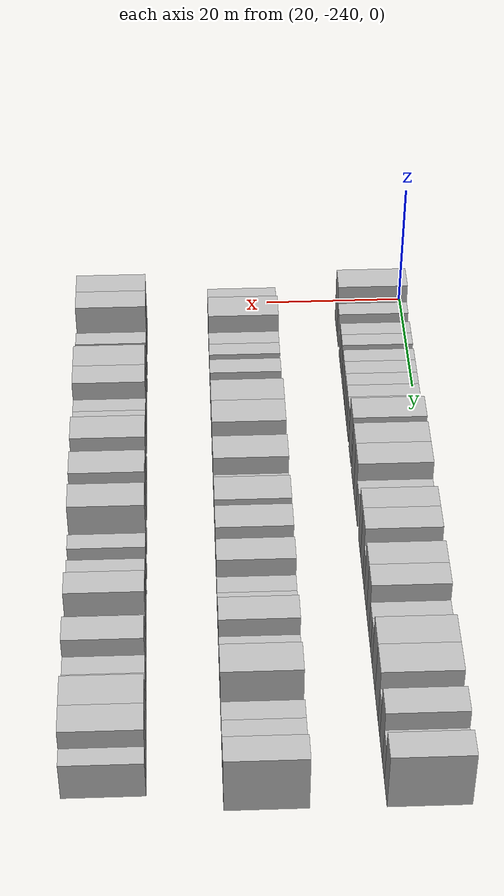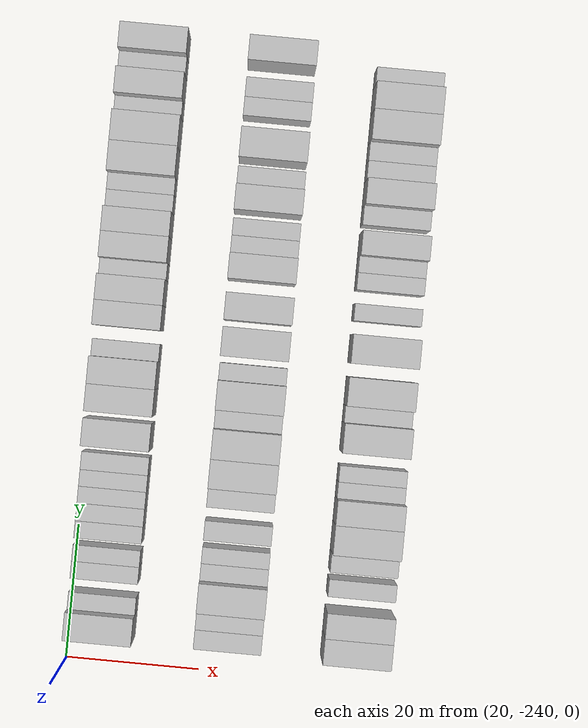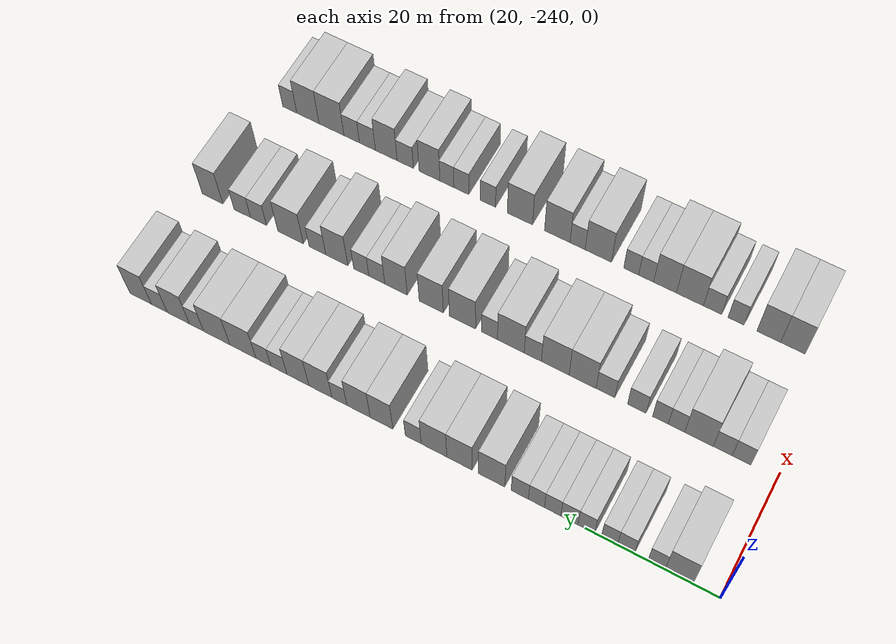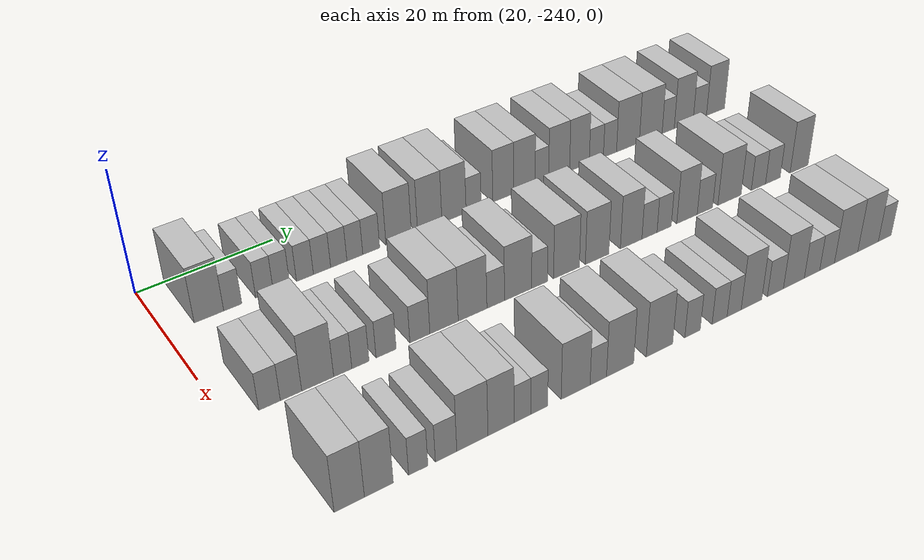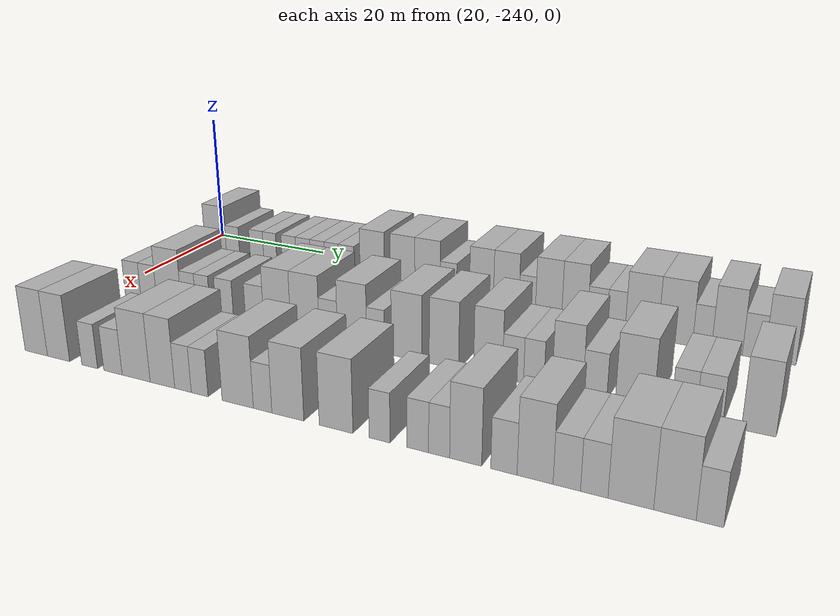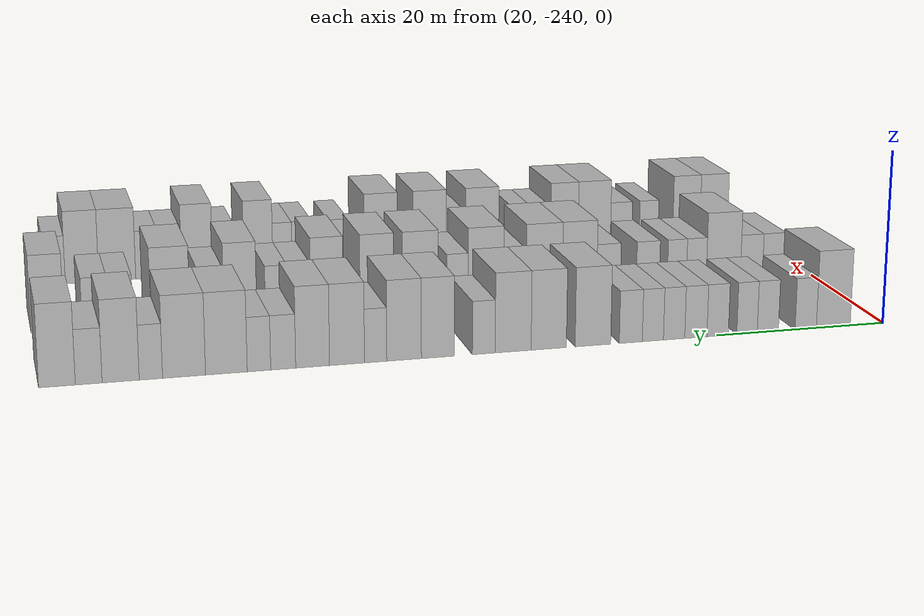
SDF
<sdf version="1.6">
 <world name="default">
  <model name="building_1">
   <static>1</static>
   <pose>25.0000 -233.9420 0 0.000000 0.000000 0.000000</pose>
   <link name="link">
    <pose>0 0 4.50 0 0 0</pose>
    <collision name="collision"><geometry><box><size>10.0000 4.1160 9.0000</size></box></geometry></collision>
    <visual name="visual">
     <cast_shadows>0</cast_shadows>
     <geometry><box><size>10.0000 4.1160 9.0000</size></box></geometry>
     <material>
      <script>
       <uri>model://HANNAS_wall/materials/scripts</uri>
       <uri>model://HANNAS_wall/materials/textures</uri>
       <name>vrc/HANNAS_wall</name>
      </script>
     </material>
    </visual>
   </link>
  </model>
  <model name="building_2">
   <static>1</static>
   <pose>25.0000 -230.6009 0 0.000000 0.000000 0.000000</pose>
   <link name="link">
    <pose>0 0 3.00 0 0 0</pose>
    <collision name="collision"><geometry><box><size>10.0000 2.5662 6.0000</size></box></geometry></collision>
    <visual name="visual">
     <cast_shadows>0</cast_shadows>
     <geometry><box><size>10.0000 2.5662 6.0000</size></box></geometry>
     <material>
      <script>
       <uri>model://HANNAS_wall/materials/scripts</uri>
       <uri>model://HANNAS_wall/materials/textures</uri>
       <name>vrc/HANNAS_wall</name>
      </script>
     </material>
    </visual>
   </link>
  </model>
  <model name="building_3">
   <static>1</static>
   <pose>25.0000 -226.0514 0 0.000000 0.000000 0.000000</pose>
   <link name="link">
    <pose>0 0 3.00 0 0 0</pose>
    <collision name="collision"><geometry><box><size>10.0000 2.5329 6.0000</size></box></geometry></collision>
    <visual name="visual">
     <cast_shadows>0</cast_shadows>
     <geometry><box><size>10.0000 2.5329 6.0000</size></box></geometry>
     <material>
      <script>
       <uri>model://HANNAS_wall/materials/scripts</uri>
       <uri>model://HANNAS_wall/materials/textures</uri>
       <name>vrc/HANNAS_wall</name>
      </script>
     </material>
    </visual>
   </link>
  </model>
  <model name="building_4">
   <static>1</static>
   <pose>25.0000 -223.5698 0 0.000000 0.000000 0.000000</pose>
   <link name="link">
    <pose>0 0 3.00 0 0 0</pose>
    <collision name="collision"><geometry><box><size>10.0000 2.4303 6.0000</size></box></geometry></collision>
    <visual name="visual">
     <cast_shadows>0</cast_shadows>
     <geometry><box><size>10.0000 2.4303 6.0000</size></box></geometry>
     <material>
      <script>
       <uri>model://HANNAS_wall/materials/scripts</uri>
       <uri>model://HANNAS_wall/materials/textures</uri>
       <name>vrc/HANNAS_wall</name>
      </script>
     </material>
    </visual>
   </link>
  </model>
  <model name="building_5">
   <static>1</static>
   <pose>25.0000 -220.0891 0 0.000000 0.000000 0.000000</pose>
   <link name="link">
    <pose>0 0 3.00 0 0 0</pose>
    <collision name="collision"><geometry><box><size>10.0000 2.5312 6.0000</size></box></geometry></collision>
    <visual name="visual">
     <cast_shadows>0</cast_shadows>
     <geometry><box><size>10.0000 2.5312 6.0000</size></box></geometry>
     <material>
      <script>
       <uri>model://HANNAS_wall/materials/scripts</uri>
       <uri>model://HANNAS_wall/materials/textures</uri>
       <name>vrc/HANNAS_wall</name>
      </script>
     </material>
    </visual>
   </link>
  </model>
  <model name="building_6">
   <static>1</static>
   <pose>25.0000 -217.5162 0 0.000000 0.000000 0.000000</pose>
   <link name="link">
    <pose>0 0 3.00 0 0 0</pose>
    <collision name="collision"><geometry><box><size>10.0000 2.6145 6.0000</size></box></geometry></collision>
    <visual name="visual">
     <cast_shadows>0</cast_shadows>
     <geometry><box><size>10.0000 2.6145 6.0000</size></box></geometry>
     <material>
      <script>
       <uri>model://HANNAS_wall/materials/scripts</uri>
       <uri>model://HANNAS_wall/materials/textures</uri>
       <name>vrc/HANNAS_wall</name>
      </script>
     </material>
    </visual>
   </link>
  </model>
  <model name="building_7">
   <static>1</static>
   <pose>25.0000 -214.9641 0 0.000000 0.000000 0.000000</pose>
   <link name="link">
    <pose>0 0 3.00 0 0 0</pose>
    <collision name="collision"><geometry><box><size>10.0000 2.4898 6.0000</size></box></geometry></collision>
    <visual name="visual">
     <cast_shadows>0</cast_shadows>
     <geometry><box><size>10.0000 2.4898 6.0000</size></box></geometry>
     <material>
      <script>
       <uri>model://HANNAS_wall/materials/scripts</uri>
       <uri>model://HANNAS_wall/materials/textures</uri>
       <name>vrc/HANNAS_wall</name>
      </script>
     </material>
    </visual>
   </link>
  </model>
  <model name="building_8">
   <static>1</static>
   <pose>25.0000 -212.4872 0 0.000000 0.000000 0.000000</pose>
   <link name="link">
    <pose>0 0 3.00 0 0 0</pose>
    <collision name="collision"><geometry><box><size>10.0000 2.4640 6.0000</size></box></geometry></collision>
    <visual name="visual">
     <cast_shadows>0</cast_shadows>
     <geometry><box><size>10.0000 2.4640 6.0000</size></box></geometry>
     <material>
      <script>
       <uri>model://HANNAS_wall/materials/scripts</uri>
       <uri>model://HANNAS_wall/materials/textures</uri>
       <name>vrc/HANNAS_wall</name>
      </script>
     </material>
    </visual>
   </link>
  </model>
  <model name="building_9">
   <static>1</static>
   <pose>25.0000 -209.9251 0 0.000000 0.000000 0.000000</pose>
   <link name="link">
    <pose>0 0 3.00 0 0 0</pose>
    <collision name="collision"><geometry><box><size>10.0000 2.6602 6.0000</size></box></geometry></collision>
    <visual name="visual">
     <cast_shadows>0</cast_shadows>
     <geometry><box><size>10.0000 2.6602 6.0000</size></box></geometry>
     <material>
      <script>
       <uri>model://HANNAS_wall/materials/scripts</uri>
       <uri>model://HANNAS_wall/materials/textures</uri>
       <name>vrc/HANNAS_wall</name>
      </script>
     </material>
    </visual>
   </link>
  </model>
  <model name="building_10">
   <static>1</static>
   <pose>25.0000 -205.5535 0 0.000000 0.000000 0.000000</pose>
   <link name="link">
    <pose>0 0 4.50 0 0 0</pose>
    <collision name="collision"><geometry><box><size>10.0000 4.0828 9.0000</size></box></geometry></collision>
    <visual name="visual">
     <cast_shadows>0</cast_shadows>
     <geometry><box><size>10.0000 4.0828 9.0000</size></box></geometry>
     <material>
      <script>
       <uri>model://HANNAS_wall/materials/scripts</uri>
       <uri>model://HANNAS_wall/materials/textures</uri>
       <name>vrc/HANNAS_wall</name>
      </script>
     </material>
    </visual>
   </link>
  </model>
  <model name="building_11">
   <static>1</static>
   <pose>25.0000 -200.5111 0 0.000000 0.000000 0.000000</pose>
   <link name="link">
    <pose>0 0 4.50 0 0 0</pose>
    <collision name="collision"><geometry><box><size>10.0000 4.0020 9.0000</size></box></geometry></collision>
    <visual name="visual">
     <cast_shadows>0</cast_shadows>
     <geometry><box><size>10.0000 4.0020 9.0000</size></box></geometry>
     <material>
      <script>
       <uri>model://HANNAS_wall/materials/scripts</uri>
       <uri>model://HANNAS_wall/materials/textures</uri>
       <name>vrc/HANNAS_wall</name>
      </script>
     </material>
    </visual>
   </link>
  </model>
  <model name="building_12">
   <static>1</static>
   <pose>25.0000 -196.4841 0 0.000000 0.000000 0.000000</pose>
   <link name="link">
    <pose>0 0 4.50 0 0 0</pose>
    <collision name="collision"><geometry><box><size>10.0000 4.0521 9.0000</size></box></geometry></collision>
    <visual name="visual">
     <cast_shadows>0</cast_shadows>
     <geometry><box><size>10.0000 4.0521 9.0000</size></box></geometry>
     <material>
      <script>
       <uri>model://HANNAS_wall/materials/scripts</uri>
       <uri>model://HANNAS_wall/materials/textures</uri>
       <name>vrc/HANNAS_wall</name>
      </script>
     </material>
    </visual>
   </link>
  </model>
  <model name="building_13">
   <static>1</static>
   <pose>25.0000 -193.1769 0 0.000000 0.000000 0.000000</pose>
   <link name="link">
    <pose>0 0 3.00 0 0 0</pose>
    <collision name="collision"><geometry><box><size>10.0000 2.5623 6.0000</size></box></geometry></collision>
    <visual name="visual">
     <cast_shadows>0</cast_shadows>
     <geometry><box><size>10.0000 2.5623 6.0000</size></box></geometry>
     <material>
      <script>
       <uri>model://HANNAS_wall/materials/scripts</uri>
       <uri>model://HANNAS_wall/materials/textures</uri>
       <name>vrc/HANNAS_wall</name>
      </script>
     </material>
    </visual>
   </link>
  </model>
  <model name="building_14">
   <static>1</static>
   <pose>25.0000 -188.0685 0 0.000000 0.000000 0.000000</pose>
   <link name="link">
    <pose>0 0 4.50 0 0 0</pose>
    <collision name="collision"><geometry><box><size>10.0000 3.6544 9.0000</size></box></geometry></collision>
    <visual name="visual">
     <cast_shadows>0</cast_shadows>
     <geometry><box><size>10.0000 3.6544 9.0000</size></box></geometry>
     <material>
      <script>
       <uri>model://HANNAS_wall/materials/scripts</uri>
       <uri>model://HANNAS_wall/materials/textures</uri>
       <name>vrc/HANNAS_wall</name>
      </script>
     </material>
    </visual>
   </link>
  </model>
  <model name="building_15">
   <static>1</static>
   <pose>25.0000 -184.3394 0 0.000000 0.000000 0.000000</pose>
   <link name="link">
    <pose>0 0 4.50 0 0 0</pose>
    <collision name="collision"><geometry><box><size>10.0000 3.8039 9.0000</size></box></geometry></collision>
    <visual name="visual">
     <cast_shadows>0</cast_shadows>
     <geometry><box><size>10.0000 3.8039 9.0000</size></box></geometry>
     <material>
      <script>
       <uri>model://HANNAS_wall/materials/scripts</uri>
       <uri>model://HANNAS_wall/materials/textures</uri>
       <name>vrc/HANNAS_wall</name>
      </script>
     </material>
    </visual>
   </link>
  </model>
  <model name="building_16">
   <static>1</static>
   <pose>25.0000 -181.2196 0 0.000000 0.000000 0.000000</pose>
   <link name="link">
    <pose>0 0 3.00 0 0 0</pose>
    <collision name="collision"><geometry><box><size>10.0000 2.4358 6.0000</size></box></geometry></collision>
    <visual name="visual">
     <cast_shadows>0</cast_shadows>
     <geometry><box><size>10.0000 2.4358 6.0000</size></box></geometry>
     <material>
      <script>
       <uri>model://HANNAS_wall/materials/scripts</uri>
       <uri>model://HANNAS_wall/materials/textures</uri>
       <name>vrc/HANNAS_wall</name>
      </script>
     </material>
    </visual>
   </link>
  </model>
  <model name="building_17">
   <static>1</static>
   <pose>25.0000 -178.1028 0 0.000000 0.000000 0.000000</pose>
   <link name="link">
    <pose>0 0 4.50 0 0 0</pose>
    <collision name="collision"><geometry><box><size>10.0000 3.7978 9.0000</size></box></geometry></collision>
    <visual name="visual">
     <cast_shadows>0</cast_shadows>
     <geometry><box><size>10.0000 3.7978 9.0000</size></box></geometry>
     <material>
      <script>
       <uri>model://HANNAS_wall/materials/scripts</uri>
       <uri>model://HANNAS_wall/materials/textures</uri>
       <name>vrc/HANNAS_wall</name>
      </script>
     </material>
    </visual>
   </link>
  </model>
  <model name="building_18">
   <static>1</static>
   <pose>25.0000 -174.3816 0 0.000000 0.000000 0.000000</pose>
   <link name="link">
    <pose>0 0 4.50 0 0 0</pose>
    <collision name="collision"><geometry><box><size>10.0000 3.6447 9.0000</size></box></geometry></collision>
    <visual name="visual">
     <cast_shadows>0</cast_shadows>
     <geometry><box><size>10.0000 3.6447 9.0000</size></box></geometry>
     <material>
      <script>
       <uri>model://HANNAS_wall/materials/scripts</uri>
       <uri>model://HANNAS_wall/materials/textures</uri>
       <name>vrc/HANNAS_wall</name>
      </script>
     </material>
    </visual>
   </link>
  </model>
  <model name="building_19">
   <static>1</static>
   <pose>25.0000 -171.2212 0 0.000000 0.000000 0.000000</pose>
   <link name="link">
    <pose>0 0 3.00 0 0 0</pose>
    <collision name="collision"><geometry><box><size>10.0000 2.6760 6.0000</size></box></geometry></collision>
    <visual name="visual">
     <cast_shadows>0</cast_shadows>
     <geometry><box><size>10.0000 2.6760 6.0000</size></box></geometry>
     <material>
      <script>
       <uri>model://HANNAS_wall/materials/scripts</uri>
       <uri>model://HANNAS_wall/materials/textures</uri>
       <name>vrc/HANNAS_wall</name>
      </script>
     </material>
    </visual>
   </link>
  </model>
  <model name="building_20">
   <static>1</static>
   <pose>25.0000 -168.6343 0 0.000000 0.000000 0.000000</pose>
   <link name="link">
    <pose>0 0 3.00 0 0 0</pose>
    <collision name="collision"><geometry><box><size>10.0000 2.4978 6.0000</size></box></geometry></collision>
    <visual name="visual">
     <cast_shadows>0</cast_shadows>
     <geometry><box><size>10.0000 2.4978 6.0000</size></box></geometry>
     <material>
      <script>
       <uri>model://HANNAS_wall/materials/scripts</uri>
       <uri>model://HANNAS_wall/materials/textures</uri>
       <name>vrc/HANNAS_wall</name>
      </script>
     </material>
    </visual>
   </link>
  </model>
  <model name="building_21">
   <static>1</static>
   <pose>25.0000 -165.1822 0 0.000000 0.000000 0.000000</pose>
   <link name="link">
    <pose>0 0 4.50 0 0 0</pose>
    <collision name="collision"><geometry><box><size>10.0000 4.4065 9.0000</size></box></geometry></collision>
    <visual name="visual">
     <cast_shadows>0</cast_shadows>
     <geometry><box><size>10.0000 4.4065 9.0000</size></box></geometry>
     <material>
      <script>
       <uri>model://HANNAS_wall/materials/scripts</uri>
       <uri>model://HANNAS_wall/materials/textures</uri>
       <name>vrc/HANNAS_wall</name>
      </script>
     </material>
    </visual>
   </link>
  </model>
  <model name="building_22">
   <static>1</static>
   <pose>25.0000 -160.7298 0 0.000000 0.000000 0.000000</pose>
   <link name="link">
    <pose>0 0 4.50 0 0 0</pose>
    <collision name="collision"><geometry><box><size>10.0000 4.4983 9.0000</size></box></geometry></collision>
    <visual name="visual">
     <cast_shadows>0</cast_shadows>
     <geometry><box><size>10.0000 4.4983 9.0000</size></box></geometry>
     <material>
      <script>
       <uri>model://HANNAS_wall/materials/scripts</uri>
       <uri>model://HANNAS_wall/materials/textures</uri>
       <name>vrc/HANNAS_wall</name>
      </script>
     </material>
    </visual>
   </link>
  </model>
  <model name="building_23">
   <static>1</static>
   <pose>25.0000 -157.2672 0 0.000000 0.000000 0.000000</pose>
   <link name="link">
    <pose>0 0 3.00 0 0 0</pose>
    <collision name="collision"><geometry><box><size>10.0000 2.4268 6.0000</size></box></geometry></collision>
    <visual name="visual">
     <cast_shadows>0</cast_shadows>
     <geometry><box><size>10.0000 2.4268 6.0000</size></box></geometry>
     <material>
      <script>
       <uri>model://HANNAS_wall/materials/scripts</uri>
       <uri>model://HANNAS_wall/materials/textures</uri>
       <name>vrc/HANNAS_wall</name>
      </script>
     </material>
    </visual>
   </link>
  </model>
  <model name="building_24">
   <static>1</static>
   <pose>25.0000 -154.1374 0 0.000000 0.000000 0.000000</pose>
   <link name="link">
    <pose>0 0 4.50 0 0 0</pose>
    <collision name="collision"><geometry><box><size>10.0000 3.8329 9.0000</size></box></geometry></collision>
    <visual name="visual">
     <cast_shadows>0</cast_shadows>
     <geometry><box><size>10.0000 3.8329 9.0000</size></box></geometry>
     <material>
      <script>
       <uri>model://HANNAS_wall/materials/scripts</uri>
       <uri>model://HANNAS_wall/materials/textures</uri>
       <name>vrc/HANNAS_wall</name>
      </script>
     </material>
    </visual>
   </link>
  </model>
  <model name="building_25">
   <static>1</static>
   <pose>25.0000 -150.8480 0 0.000000 0.000000 0.000000</pose>
   <link name="link">
    <pose>0 0 3.00 0 0 0</pose>
    <collision name="collision"><geometry><box><size>10.0000 2.7458 6.0000</size></box></geometry></collision>
    <visual name="visual">
     <cast_shadows>0</cast_shadows>
     <geometry><box><size>10.0000 2.7458 6.0000</size></box></geometry>
     <material>
      <script>
       <uri>model://HANNAS_wall/materials/scripts</uri>
       <uri>model://HANNAS_wall/materials/textures</uri>
       <name>vrc/HANNAS_wall</name>
      </script>
     </material>
    </visual>
   </link>
  </model>
  <model name="building_26">
   <static>1</static>
   <pose>25.0000 -147.6009 0 0.000000 0.000000 0.000000</pose>
   <link name="link">
    <pose>0 0 4.50 0 0 0</pose>
    <collision name="collision"><geometry><box><size>10.0000 3.7486 9.0000</size></box></geometry></collision>
    <visual name="visual">
     <cast_shadows>0</cast_shadows>
     <geometry><box><size>10.0000 3.7486 9.0000</size></box></geometry>
     <material>
      <script>
       <uri>model://HANNAS_wall/materials/scripts</uri>
       <uri>model://HANNAS_wall/materials/textures</uri>
       <name>vrc/HANNAS_wall</name>
      </script>
     </material>
    </visual>
   </link>
  </model>
  <model name="building_122">
   <static>1</static>
   <pose>44.0000 -234.5706 0 0.000000 0.000000 0.000000</pose>
   <link name="link">
    <pose>0 0 3.00 0 0 0</pose>
    <collision name="collision"><geometry><box><size>10.0000 2.8588 6.0000</size></box></geometry></collision>
    <visual name="visual">
     <cast_shadows>0</cast_shadows>
     <geometry><box><size>10.0000 2.8588 6.0000</size></box></geometry>
     <material>
      <script>
       <uri>model://HANNAS_wall/materials/scripts</uri>
       <uri>model://HANNAS_wall/materials/textures</uri>
       <name>vrc/HANNAS_wall</name>
      </script>
     </material>
    </visual>
   </link>
  </model>
  <model name="building_123">
   <static>1</static>
   <pose>44.0000 -231.7061 0 0.000000 0.000000 0.000000</pose>
   <link name="link">
    <pose>0 0 3.00 0 0 0</pose>
    <collision name="collision"><geometry><box><size>10.0000 2.8702 6.0000</size></box></geometry></collision>
    <visual name="visual">
     <cast_shadows>0</cast_shadows>
     <geometry><box><size>10.0000 2.8702 6.0000</size></box></geometry>
     <material>
      <script>
       <uri>model://HANNAS_wall/materials/scripts</uri>
       <uri>model://HANNAS_wall/materials/textures</uri>
       <name>vrc/HANNAS_wall</name>
      </script>
     </material>
    </visual>
   </link>
  </model>
  <model name="building_124">
   <static>1</static>
   <pose>44.0000 -228.0843 0 0.000000 0.000000 0.000000</pose>
   <link name="link">
    <pose>0 0 4.50 0 0 0</pose>
    <collision name="collision"><geometry><box><size>10.0000 4.3735 9.0000</size></box></geometry></collision>
    <visual name="visual">
     <cast_shadows>0</cast_shadows>
     <geometry><box><size>10.0000 4.3735 9.0000</size></box></geometry>
     <material>
      <script>
       <uri>model://HANNAS_wall/materials/scripts</uri>
       <uri>model://HANNAS_wall/materials/textures</uri>
       <name>vrc/HANNAS_wall</name>
      </script>
     </material>
    </visual>
   </link>
  </model>
  <model name="building_125">
   <static>1</static>
   <pose>44.0000 -224.6291 0 0.000000 0.000000 0.000000</pose>
   <link name="link">
    <pose>0 0 3.00 0 0 0</pose>
    <collision name="collision"><geometry><box><size>10.0000 2.5369 6.0000</size></box></geometry></collision>
    <visual name="visual">
     <cast_shadows>0</cast_shadows>
     <geometry><box><size>10.0000 2.5369 6.0000</size></box></geometry>
     <material>
      <script>
       <uri>model://HANNAS_wall/materials/scripts</uri>
       <uri>model://HANNAS_wall/materials/textures</uri>
       <name>vrc/HANNAS_wall</name>
      </script>
     </material>
    </visual>
   </link>
  </model>
  <model name="building_126">
   <static>1</static>
   <pose>44.0000 -222.1472 0 0.000000 0.000000 0.000000</pose>
   <link name="link">
    <pose>0 0 3.00 0 0 0</pose>
    <collision name="collision"><geometry><box><size>10.0000 2.4270 6.0000</size></box></geometry></collision>
    <visual name="visual">
     <cast_shadows>0</cast_shadows>
     <geometry><box><size>10.0000 2.4270 6.0000</size></box></geometry>
     <material>
      <script>
       <uri>model://HANNAS_wall/materials/scripts</uri>
       <uri>model://HANNAS_wall/materials/textures</uri>
       <name>vrc/HANNAS_wall</name>
      </script>
     </material>
    </visual>
   </link>
  </model>
  <model name="building_127">
   <static>1</static>
   <pose>44.0000 -218.4833 0 0.000000 0.000000 0.000000</pose>
   <link name="link">
    <pose>0 0 3.00 0 0 0</pose>
    <collision name="collision"><geometry><box><size>10.0000 2.9008 6.0000</size></box></geometry></collision>
    <visual name="visual">
     <cast_shadows>0</cast_shadows>
     <geometry><box><size>10.0000 2.9008 6.0000</size></box></geometry>
     <material>
      <script>
       <uri>model://HANNAS_wall/materials/scripts</uri>
       <uri>model://HANNAS_wall/materials/textures</uri>
       <name>vrc/HANNAS_wall</name>
      </script>
     </material>
    </visual>
   </link>
  </model>
  <model name="building_128">
   <static>1</static>
   <pose>44.0000 -213.5539 0 0.000000 0.000000 0.000000</pose>
   <link name="link">
    <pose>0 0 3.00 0 0 0</pose>
    <collision name="collision"><geometry><box><size>10.0000 2.9580 6.0000</size></box></geometry></collision>
    <visual name="visual">
     <cast_shadows>0</cast_shadows>
     <geometry><box><size>10.0000 2.9580 6.0000</size></box></geometry>
     <material>
      <script>
       <uri>model://HANNAS_wall/materials/scripts</uri>
       <uri>model://HANNAS_wall/materials/textures</uri>
       <name>vrc/HANNAS_wall</name>
      </script>
     </material>
    </visual>
   </link>
  </model>
  <model name="building_129">
   <static>1</static>
   <pose>44.0000 -209.9330 0 0.000000 0.000000 0.000000</pose>
   <link name="link">
    <pose>0 0 4.50 0 0 0</pose>
    <collision name="collision"><geometry><box><size>10.0000 4.2837 9.0000</size></box></geometry></collision>
    <visual name="visual">
     <cast_shadows>0</cast_shadows>
     <geometry><box><size>10.0000 4.2837 9.0000</size></box></geometry>
     <material>
      <script>
       <uri>model://HANNAS_wall/materials/scripts</uri>
       <uri>model://HANNAS_wall/materials/textures</uri>
       <name>vrc/HANNAS_wall</name>
      </script>
     </material>
    </visual>
   </link>
  </model>
  <model name="building_130">
   <static>1</static>
   <pose>44.0000 -205.5796 0 0.000000 0.000000 0.000000</pose>
   <link name="link">
    <pose>0 0 4.50 0 0 0</pose>
    <collision name="collision"><geometry><box><size>10.0000 4.4232 9.0000</size></box></geometry></collision>
    <visual name="visual">
     <cast_shadows>0</cast_shadows>
     <geometry><box><size>10.0000 4.4232 9.0000</size></box></geometry>
     <material>
      <script>
       <uri>model://HANNAS_wall/materials/scripts</uri>
       <uri>model://HANNAS_wall/materials/textures</uri>
       <name>vrc/HANNAS_wall</name>
      </script>
     </material>
    </visual>
   </link>
  </model>
  <model name="building_131">
   <static>1</static>
   <pose>44.0000 -201.9860 0 0.000000 0.000000 0.000000</pose>
   <link name="link">
    <pose>0 0 3.00 0 0 0</pose>
    <collision name="collision"><geometry><box><size>10.0000 2.7641 6.0000</size></box></geometry></collision>
    <visual name="visual">
     <cast_shadows>0</cast_shadows>
     <geometry><box><size>10.0000 2.7641 6.0000</size></box></geometry>
     <material>
      <script>
       <uri>model://HANNAS_wall/materials/scripts</uri>
       <uri>model://HANNAS_wall/materials/textures</uri>
       <name>vrc/HANNAS_wall</name>
      </script>
     </material>
    </visual>
   </link>
  </model>
  <model name="building_132">
   <static>1</static>
   <pose>44.0000 -198.4338 0 0.000000 0.000000 0.000000</pose>
   <link name="link">
    <pose>0 0 4.50 0 0 0</pose>
    <collision name="collision"><geometry><box><size>10.0000 4.3402 9.0000</size></box></geometry></collision>
    <visual name="visual">
     <cast_shadows>0</cast_shadows>
     <geometry><box><size>10.0000 4.3402 9.0000</size></box></geometry>
     <material>
      <script>
       <uri>model://HANNAS_wall/materials/scripts</uri>
       <uri>model://HANNAS_wall/materials/textures</uri>
       <name>vrc/HANNAS_wall</name>
      </script>
     </material>
    </visual>
   </link>
  </model>
  <model name="building_133">
   <static>1</static>
   <pose>44.0000 -194.9786 0 0.000000 0.000000 0.000000</pose>
   <link name="link">
    <pose>0 0 3.00 0 0 0</pose>
    <collision name="collision"><geometry><box><size>10.0000 2.5704 6.0000</size></box></geometry></collision>
    <visual name="visual">
     <cast_shadows>0</cast_shadows>
     <geometry><box><size>10.0000 2.5704 6.0000</size></box></geometry>
     <material>
      <script>
       <uri>model://HANNAS_wall/materials/scripts</uri>
       <uri>model://HANNAS_wall/materials/textures</uri>
       <name>vrc/HANNAS_wall</name>
      </script>
     </material>
    </visual>
   </link>
  </model>
  <model name="building_134">
   <static>1</static>
   <pose>44.0000 -190.5430 0 0.000000 0.000000 0.000000</pose>
   <link name="link">
    <pose>0 0 4.50 0 0 0</pose>
    <collision name="collision"><geometry><box><size>10.0000 4.3008 9.0000</size></box></geometry></collision>
    <visual name="visual">
     <cast_shadows>0</cast_shadows>
     <geometry><box><size>10.0000 4.3008 9.0000</size></box></geometry>
     <material>
      <script>
       <uri>model://HANNAS_wall/materials/scripts</uri>
       <uri>model://HANNAS_wall/materials/textures</uri>
       <name>vrc/HANNAS_wall</name>
      </script>
     </material>
    </visual>
   </link>
  </model>
  <model name="building_135">
   <static>1</static>
   <pose>44.0000 -185.3837 0 0.000000 0.000000 0.000000</pose>
   <link name="link">
    <pose>0 0 4.50 0 0 0</pose>
    <collision name="collision"><geometry><box><size>10.0000 4.0177 9.0000</size></box></geometry></collision>
    <visual name="visual">
     <cast_shadows>0</cast_shadows>
     <geometry><box><size>10.0000 4.0177 9.0000</size></box></geometry>
     <material>
      <script>
       <uri>model://HANNAS_wall/materials/scripts</uri>
       <uri>model://HANNAS_wall/materials/textures</uri>
       <name>vrc/HANNAS_wall</name>
      </script>
     </material>
    </visual>
   </link>
  </model>
  <model name="building_136">
   <static>1</static>
   <pose>44.0000 -179.4810 0 0.000000 0.000000 0.000000</pose>
   <link name="link">
    <pose>0 0 4.50 0 0 0</pose>
    <collision name="collision"><geometry><box><size>10.0000 3.7879 9.0000</size></box></geometry></collision>
    <visual name="visual">
     <cast_shadows>0</cast_shadows>
     <geometry><box><size>10.0000 3.7879 9.0000</size></box></geometry>
     <material>
      <script>
       <uri>model://HANNAS_wall/materials/scripts</uri>
       <uri>model://HANNAS_wall/materials/textures</uri>
       <name>vrc/HANNAS_wall</name>
      </script>
     </material>
    </visual>
   </link>
  </model>
  <model name="building_137">
   <static>1</static>
   <pose>44.0000 -176.2368 0 0.000000 0.000000 0.000000</pose>
   <link name="link">
    <pose>0 0 3.00 0 0 0</pose>
    <collision name="collision"><geometry><box><size>10.0000 2.7006 6.0000</size></box></geometry></collision>
    <visual name="visual">
     <cast_shadows>0</cast_shadows>
     <geometry><box><size>10.0000 2.7006 6.0000</size></box></geometry>
     <material>
      <script>
       <uri>model://HANNAS_wall/materials/scripts</uri>
       <uri>model://HANNAS_wall/materials/textures</uri>
       <name>vrc/HANNAS_wall</name>
      </script>
     </material>
    </visual>
   </link>
  </model>
  <model name="building_138">
   <static>1</static>
   <pose>44.0000 -173.6014 0 0.000000 0.000000 0.000000</pose>
   <link name="link">
    <pose>0 0 3.00 0 0 0</pose>
    <collision name="collision"><geometry><box><size>10.0000 2.5701 6.0000</size></box></geometry></collision>
    <visual name="visual">
     <cast_shadows>0</cast_shadows>
     <geometry><box><size>10.0000 2.5701 6.0000</size></box></geometry>
     <material>
      <script>
       <uri>model://HANNAS_wall/materials/scripts</uri>
       <uri>model://HANNAS_wall/materials/textures</uri>
       <name>vrc/HANNAS_wall</name>
      </script>
     </material>
    </visual>
   </link>
  </model>
  <model name="building_139">
   <static>1</static>
   <pose>44.0000 -169.4291 0 0.000000 0.000000 0.000000</pose>
   <link name="link">
    <pose>0 0 4.50 0 0 0</pose>
    <collision name="collision"><geometry><box><size>10.0000 3.7746 9.0000</size></box></geometry></collision>
    <visual name="visual">
     <cast_shadows>0</cast_shadows>
     <geometry><box><size>10.0000 3.7746 9.0000</size></box></geometry>
     <material>
      <script>
       <uri>model://HANNAS_wall/materials/scripts</uri>
       <uri>model://HANNAS_wall/materials/textures</uri>
       <name>vrc/HANNAS_wall</name>
      </script>
     </material>
    </visual>
   </link>
  </model>
  <model name="building_140">
   <static>1</static>
   <pose>44.0000 -166.1015 0 0.000000 0.000000 0.000000</pose>
   <link name="link">
    <pose>0 0 3.00 0 0 0</pose>
    <collision name="collision"><geometry><box><size>10.0000 2.8806 6.0000</size></box></geometry></collision>
    <visual name="visual">
     <cast_shadows>0</cast_shadows>
     <geometry><box><size>10.0000 2.8806 6.0000</size></box></geometry>
     <material>
      <script>
       <uri>model://HANNAS_wall/materials/scripts</uri>
       <uri>model://HANNAS_wall/materials/textures</uri>
       <name>vrc/HANNAS_wall</name>
      </script>
     </material>
    </visual>
   </link>
  </model>
  <model name="building_141">
   <static>1</static>
   <pose>44.0000 -161.4417 0 0.000000 0.000000 0.000000</pose>
   <link name="link">
    <pose>0 0 4.50 0 0 0</pose>
    <collision name="collision"><geometry><box><size>10.0000 4.4390 9.0000</size></box></geometry></collision>
    <visual name="visual">
     <cast_shadows>0</cast_shadows>
     <geometry><box><size>10.0000 4.4390 9.0000</size></box></geometry>
     <material>
      <script>
       <uri>model://HANNAS_wall/materials/scripts</uri>
       <uri>model://HANNAS_wall/materials/textures</uri>
       <name>vrc/HANNAS_wall</name>
      </script>
     </material>
    </visual>
   </link>
  </model>
  <model name="building_142">
   <static>1</static>
   <pose>44.0000 -155.8319 0 0.000000 0.000000 0.000000</pose>
   <link name="link">
    <pose>0 0 3.00 0 0 0</pose>
    <collision name="collision"><geometry><box><size>10.0000 2.7807 6.0000</size></box></geometry></collision>
    <visual name="visual">
     <cast_shadows>0</cast_shadows>
     <geometry><box><size>10.0000 2.7807 6.0000</size></box></geometry>
     <material>
      <script>
       <uri>model://HANNAS_wall/materials/scripts</uri>
       <uri>model://HANNAS_wall/materials/textures</uri>
       <name>vrc/HANNAS_wall</name>
      </script>
     </material>
    </visual>
   </link>
  </model>
  <model name="building_143">
   <static>1</static>
   <pose>44.0000 -152.9872 0 0.000000 0.000000 0.000000</pose>
   <link name="link">
    <pose>0 0 3.00 0 0 0</pose>
    <collision name="collision"><geometry><box><size>10.0000 2.9087 6.0000</size></box></geometry></collision>
    <visual name="visual">
     <cast_shadows>0</cast_shadows>
     <geometry><box><size>10.0000 2.9087 6.0000</size></box></geometry>
     <material>
      <script>
       <uri>model://HANNAS_wall/materials/scripts</uri>
       <uri>model://HANNAS_wall/materials/textures</uri>
       <name>vrc/HANNAS_wall</name>
      </script>
     </material>
    </visual>
   </link>
  </model>
  <model name="building_144">
   <static>1</static>
   <pose>44.0000 -147.7022 0 0.000000 0.000000 0.000000</pose>
   <link name="link">
    <pose>0 0 4.50 0 0 0</pose>
    <collision name="collision"><geometry><box><size>10.0000 3.6614 9.0000</size></box></geometry></collision>
    <visual name="visual">
     <cast_shadows>0</cast_shadows>
     <geometry><box><size>10.0000 3.6614 9.0000</size></box></geometry>
     <material>
      <script>
       <uri>model://HANNAS_wall/materials/scripts</uri>
       <uri>model://HANNAS_wall/materials/textures</uri>
       <name>vrc/HANNAS_wall</name>
      </script>
     </material>
    </visual>
   </link>
  </model>
  <model name="building_242">
   <static>1</static>
   <pose>63.0000 -234.0891 0 0.000000 0.000000 0.000000</pose>
   <link name="link">
    <pose>0 0 4.50 0 0 0</pose>
    <collision name="collision"><geometry><box><size>10.0000 3.8219 9.0000</size></box></geometry></collision>
    <visual name="visual">
     <cast_shadows>0</cast_shadows>
     <geometry><box><size>10.0000 3.8219 9.0000</size></box></geometry>
     <material>
      <script>
       <uri>model://HANNAS_wall/materials/scripts</uri>
       <uri>model://HANNAS_wall/materials/textures</uri>
       <name>vrc/HANNAS_wall</name>
      </script>
     </material>
    </visual>
   </link>
  </model>
  <model name="building_243">
   <static>1</static>
   <pose>63.0000 -230.3190 0 0.000000 0.000000 0.000000</pose>
   <link name="link">
    <pose>0 0 4.50 0 0 0</pose>
    <collision name="collision"><geometry><box><size>10.0000 3.7183 9.0000</size></box></geometry></collision>
    <visual name="visual">
     <cast_shadows>0</cast_shadows>
     <geometry><box><size>10.0000 3.7183 9.0000</size></box></geometry>
     <material>
      <script>
       <uri>model://HANNAS_wall/materials/scripts</uri>
       <uri>model://HANNAS_wall/materials/textures</uri>
       <name>vrc/HANNAS_wall</name>
      </script>
     </material>
    </visual>
   </link>
  </model>
  <model name="building_244">
   <static>1</static>
   <pose>63.0000 -225.1836 0 0.000000 0.000000 0.000000</pose>
   <link name="link">
    <pose>0 0 3.00 0 0 0</pose>
    <collision name="collision"><geometry><box><size>10.0000 2.5524 6.0000</size></box></geometry></collision>
    <visual name="visual">
     <cast_shadows>0</cast_shadows>
     <geometry><box><size>10.0000 2.5524 6.0000</size></box></geometry>
     <material>
      <script>
       <uri>model://HANNAS_wall/materials/scripts</uri>
       <uri>model://HANNAS_wall/materials/textures</uri>
       <name>vrc/HANNAS_wall</name>
      </script>
     </material>
    </visual>
   </link>
  </model>
  <model name="building_245">
   <static>1</static>
   <pose>63.0000 -221.4590 0 0.000000 0.000000 0.000000</pose>
   <link name="link">
    <pose>0 0 3.00 0 0 0</pose>
    <collision name="collision"><geometry><box><size>10.0000 2.8967 6.0000</size></box></geometry></collision>
    <visual name="visual">
     <cast_shadows>0</cast_shadows>
     <geometry><box><size>10.0000 2.8967 6.0000</size></box></geometry>
     <material>
      <script>
       <uri>model://HANNAS_wall/materials/scripts</uri>
       <uri>model://HANNAS_wall/materials/textures</uri>
       <name>vrc/HANNAS_wall</name>
      </script>
     </material>
    </visual>
   </link>
  </model>
  <model name="building_246">
   <static>1</static>
   <pose>63.0000 -217.8471 0 0.000000 0.000000 0.000000</pose>
   <link name="link">
    <pose>0 0 4.50 0 0 0</pose>
    <collision name="collision"><geometry><box><size>10.0000 4.3272 9.0000</size></box></geometry></collision>
    <visual name="visual">
     <cast_shadows>0</cast_shadows>
     <geometry><box><size>10.0000 4.3272 9.0000</size></box></geometry>
     <material>
      <script>
       <uri>model://HANNAS_wall/materials/scripts</uri>
       <uri>model://HANNAS_wall/materials/textures</uri>
       <name>vrc/HANNAS_wall</name>
      </script>
     </material>
    </visual>
   </link>
  </model>
  <model name="building_247">
   <static>1</static>
   <pose>63.0000 -213.8367 0 0.000000 0.000000 0.000000</pose>
   <link name="link">
    <pose>0 0 4.50 0 0 0</pose>
    <collision name="collision"><geometry><box><size>10.0000 3.6936 9.0000</size></box></geometry></collision>
    <visual name="visual">
     <cast_shadows>0</cast_shadows>
     <geometry><box><size>10.0000 3.6936 9.0000</size></box></geometry>
     <material>
      <script>
       <uri>model://HANNAS_wall/materials/scripts</uri>
       <uri>model://HANNAS_wall/materials/textures</uri>
       <name>vrc/HANNAS_wall</name>
      </script>
     </material>
    </visual>
   </link>
  </model>
  <model name="building_248">
   <static>1</static>
   <pose>63.0000 -210.7763 0 0.000000 0.000000 0.000000</pose>
   <link name="link">
    <pose>0 0 3.00 0 0 0</pose>
    <collision name="collision"><geometry><box><size>10.0000 2.4272 6.0000</size></box></geometry></collision>
    <visual name="visual">
     <cast_shadows>0</cast_shadows>
     <geometry><box><size>10.0000 2.4272 6.0000</size></box></geometry>
     <material>
      <script>
       <uri>model://HANNAS_wall/materials/scripts</uri>
       <uri>model://HANNAS_wall/materials/textures</uri>
       <name>vrc/HANNAS_wall</name>
      </script>
     </material>
    </visual>
   </link>
  </model>
  <model name="building_249">
   <static>1</static>
   <pose>63.0000 -208.3455 0 0.000000 0.000000 0.000000</pose>
   <link name="link">
    <pose>0 0 3.00 0 0 0</pose>
    <collision name="collision"><geometry><box><size>10.0000 2.4346 6.0000</size></box></geometry></collision>
    <visual name="visual">
     <cast_shadows>0</cast_shadows>
     <geometry><box><size>10.0000 2.4346 6.0000</size></box></geometry>
     <material>
      <script>
       <uri>model://HANNAS_wall/materials/scripts</uri>
       <uri>model://HANNAS_wall/materials/textures</uri>
       <name>vrc/HANNAS_wall</name>
      </script>
     </material>
    </visual>
   </link>
  </model>
  <model name="building_250">
   <static>1</static>
   <pose>63.0000 -202.9553 0 0.000000 0.000000 0.000000</pose>
   <link name="link">
    <pose>0 0 4.50 0 0 0</pose>
    <collision name="collision"><geometry><box><size>10.0000 4.3457 9.0000</size></box></geometry></collision>
    <visual name="visual">
     <cast_shadows>0</cast_shadows>
     <geometry><box><size>10.0000 4.3457 9.0000</size></box></geometry>
     <material>
      <script>
       <uri>model://HANNAS_wall/materials/scripts</uri>
       <uri>model://HANNAS_wall/materials/textures</uri>
       <name>vrc/HANNAS_wall</name>
      </script>
     </material>
    </visual>
   </link>
  </model>
  <model name="building_251">
   <static>1</static>
   <pose>63.0000 -199.5242 0 0.000000 0.000000 0.000000</pose>
   <link name="link">
    <pose>0 0 3.00 0 0 0</pose>
    <collision name="collision"><geometry><box><size>10.0000 2.5165 6.0000</size></box></geometry></collision>
    <visual name="visual">
     <cast_shadows>0</cast_shadows>
     <geometry><box><size>10.0000 2.5165 6.0000</size></box></geometry>
     <material>
      <script>
       <uri>model://HANNAS_wall/materials/scripts</uri>
       <uri>model://HANNAS_wall/materials/textures</uri>
       <name>vrc/HANNAS_wall</name>
      </script>
     </material>
    </visual>
   </link>
  </model>
  <model name="building_252">
   <static>1</static>
   <pose>63.0000 -196.1442 0 0.000000 0.000000 0.000000</pose>
   <link name="link">
    <pose>0 0 4.50 0 0 0</pose>
    <collision name="collision"><geometry><box><size>10.0000 4.2436 9.0000</size></box></geometry></collision>
    <visual name="visual">
     <cast_shadows>0</cast_shadows>
     <geometry><box><size>10.0000 4.2436 9.0000</size></box></geometry>
     <material>
      <script>
       <uri>model://HANNAS_wall/materials/scripts</uri>
       <uri>model://HANNAS_wall/materials/textures</uri>
       <name>vrc/HANNAS_wall</name>
      </script>
     </material>
    </visual>
   </link>
  </model>
  <model name="building_253">
   <static>1</static>
   <pose>63.0000 -189.8887 0 0.000000 0.000000 0.000000</pose>
   <link name="link">
    <pose>0 0 4.50 0 0 0</pose>
    <collision name="collision"><geometry><box><size>10.0000 4.2675 9.0000</size></box></geometry></collision>
    <visual name="visual">
     <cast_shadows>0</cast_shadows>
     <geometry><box><size>10.0000 4.2675 9.0000</size></box></geometry>
     <material>
      <script>
       <uri>model://HANNAS_wall/materials/scripts</uri>
       <uri>model://HANNAS_wall/materials/textures</uri>
       <name>vrc/HANNAS_wall</name>
      </script>
     </material>
    </visual>
   </link>
  </model>
  <model name="building_254">
   <static>1</static>
   <pose>63.0000 -184.4761 0 0.000000 0.000000 0.000000</pose>
   <link name="link">
    <pose>0 0 3.00 0 0 0</pose>
    <collision name="collision"><geometry><box><size>10.0000 2.5576 6.0000</size></box></geometry></collision>
    <visual name="visual">
     <cast_shadows>0</cast_shadows>
     <geometry><box><size>10.0000 2.5576 6.0000</size></box></geometry>
     <material>
      <script>
       <uri>model://HANNAS_wall/materials/scripts</uri>
       <uri>model://HANNAS_wall/materials/textures</uri>
       <name>vrc/HANNAS_wall</name>
      </script>
     </material>
    </visual>
   </link>
  </model>
  <model name="building_255">
   <static>1</static>
   <pose>63.0000 -179.9211 0 0.000000 0.000000 0.000000</pose>
   <link name="link">
    <pose>0 0 3.00 0 0 0</pose>
    <collision name="collision"><geometry><box><size>10.0000 2.5523 6.0000</size></box></geometry></collision>
    <visual name="visual">
     <cast_shadows>0</cast_shadows>
     <geometry><box><size>10.0000 2.5523 6.0000</size></box></geometry>
     <material>
      <script>
       <uri>model://HANNAS_wall/materials/scripts</uri>
       <uri>model://HANNAS_wall/materials/textures</uri>
       <name>vrc/HANNAS_wall</name>
      </script>
     </material>
    </visual>
   </link>
  </model>
  <model name="building_256">
   <static>1</static>
   <pose>63.0000 -177.4324 0 0.000000 0.000000 0.000000</pose>
   <link name="link">
    <pose>0 0 3.00 0 0 0</pose>
    <collision name="collision"><geometry><box><size>10.0000 2.4253 6.0000</size></box></geometry></collision>
    <visual name="visual">
     <cast_shadows>0</cast_shadows>
     <geometry><box><size>10.0000 2.4253 6.0000</size></box></geometry>
     <material>
      <script>
       <uri>model://HANNAS_wall/materials/scripts</uri>
       <uri>model://HANNAS_wall/materials/textures</uri>
       <name>vrc/HANNAS_wall</name>
      </script>
     </material>
    </visual>
   </link>
  </model>
  <model name="building_257">
   <static>1</static>
   <pose>63.0000 -174.4139 0 0.000000 0.000000 0.000000</pose>
   <link name="link">
    <pose>0 0 4.50 0 0 0</pose>
    <collision name="collision"><geometry><box><size>10.0000 3.6117 9.0000</size></box></geometry></collision>
    <visual name="visual">
     <cast_shadows>0</cast_shadows>
     <geometry><box><size>10.0000 3.6117 9.0000</size></box></geometry>
     <material>
      <script>
       <uri>model://HANNAS_wall/materials/scripts</uri>
       <uri>model://HANNAS_wall/materials/textures</uri>
       <name>vrc/HANNAS_wall</name>
      </script>
     </material>
    </visual>
   </link>
  </model>
  <model name="building_258">
   <static>1</static>
   <pose>63.0000 -170.1778 0 0.000000 0.000000 0.000000</pose>
   <link name="link">
    <pose>0 0 3.00 0 0 0</pose>
    <collision name="collision"><geometry><box><size>10.0000 2.8604 6.0000</size></box></geometry></collision>
    <visual name="visual">
     <cast_shadows>0</cast_shadows>
     <geometry><box><size>10.0000 2.8604 6.0000</size></box></geometry>
     <material>
      <script>
       <uri>model://HANNAS_wall/materials/scripts</uri>
       <uri>model://HANNAS_wall/materials/textures</uri>
       <name>vrc/HANNAS_wall</name>
      </script>
     </material>
    </visual>
   </link>
  </model>
  <model name="building_259">
   <static>1</static>
   <pose>63.0000 -166.8402 0 0.000000 0.000000 0.000000</pose>
   <link name="link">
    <pose>0 0 4.50 0 0 0</pose>
    <collision name="collision"><geometry><box><size>10.0000 3.8149 9.0000</size></box></geometry></collision>
    <visual name="visual">
     <cast_shadows>0</cast_shadows>
     <geometry><box><size>10.0000 3.8149 9.0000</size></box></geometry>
     <material>
      <script>
       <uri>model://HANNAS_wall/materials/scripts</uri>
       <uri>model://HANNAS_wall/materials/textures</uri>
       <name>vrc/HANNAS_wall</name>
      </script>
     </material>
    </visual>
   </link>
  </model>
  <model name="building_260">
   <static>1</static>
   <pose>63.0000 -163.5174 0 0.000000 0.000000 0.000000</pose>
   <link name="link">
    <pose>0 0 3.00 0 0 0</pose>
    <collision name="collision"><geometry><box><size>10.0000 2.8307 6.0000</size></box></geometry></collision>
    <visual name="visual">
     <cast_shadows>0</cast_shadows>
     <geometry><box><size>10.0000 2.8307 6.0000</size></box></geometry>
     <material>
      <script>
       <uri>model://HANNAS_wall/materials/scripts</uri>
       <uri>model://HANNAS_wall/materials/textures</uri>
       <name>vrc/HANNAS_wall</name>
      </script>
     </material>
    </visual>
   </link>
  </model>
  <model name="building_261">
   <static>1</static>
   <pose>63.0000 -160.7210 0 0.000000 0.000000 0.000000</pose>
   <link name="link">
    <pose>0 0 3.00 0 0 0</pose>
    <collision name="collision"><geometry><box><size>10.0000 2.7622 6.0000</size></box></geometry></collision>
    <visual name="visual">
     <cast_shadows>0</cast_shadows>
     <geometry><box><size>10.0000 2.7622 6.0000</size></box></geometry>
     <material>
      <script>
       <uri>model://HANNAS_wall/materials/scripts</uri>
       <uri>model://HANNAS_wall/materials/textures</uri>
       <name>vrc/HANNAS_wall</name>
      </script>
     </material>
    </visual>
   </link>
  </model>
  <model name="building_262">
   <static>1</static>
   <pose>63.0000 -157.1042 0 0.000000 0.000000 0.000000</pose>
   <link name="link">
    <pose>0 0 4.50 0 0 0</pose>
    <collision name="collision"><geometry><box><size>10.0000 4.4715 9.0000</size></box></geometry></collision>
    <visual name="visual">
     <cast_shadows>0</cast_shadows>
     <geometry><box><size>10.0000 4.4715 9.0000</size></box></geometry>
     <material>
      <script>
       <uri>model://HANNAS_wall/materials/scripts</uri>
       <uri>model://HANNAS_wall/materials/textures</uri>
       <name>vrc/HANNAS_wall</name>
      </script>
     </material>
    </visual>
   </link>
  </model>
  <model name="building_263">
   <static>1</static>
   <pose>63.0000 -152.8609 0 0.000000 0.000000 0.000000</pose>
   <link name="link">
    <pose>0 0 4.50 0 0 0</pose>
    <collision name="collision"><geometry><box><size>10.0000 4.0150 9.0000</size></box></geometry></collision>
    <visual name="visual">
     <cast_shadows>0</cast_shadows>
     <geometry><box><size>10.0000 4.0150 9.0000</size></box></geometry>
     <material>
      <script>
       <uri>model://HANNAS_wall/materials/scripts</uri>
       <uri>model://HANNAS_wall/materials/textures</uri>
       <name>vrc/HANNAS_wall</name>
      </script>
     </material>
    </visual>
   </link>
  </model>
  <model name="building_264">
   <static>1</static>
   <pose>63.0000 -149.5829 0 0.000000 0.000000 0.000000</pose>
   <link name="link">
    <pose>0 0 3.00 0 0 0</pose>
    <collision name="collision"><geometry><box><size>10.0000 2.5410 6.0000</size></box></geometry></collision>
    <visual name="visual">
     <cast_shadows>0</cast_shadows>
     <geometry><box><size>10.0000 2.5410 6.0000</size></box></geometry>
     <material>
      <script>
       <uri>model://HANNAS_wall/materials/scripts</uri>
       <uri>model://HANNAS_wall/materials/textures</uri>
       <name>vrc/HANNAS_wall</name>
      </script>
     </material>
    </visual>
   </link>
  </model>
 </world>
</sdf>
